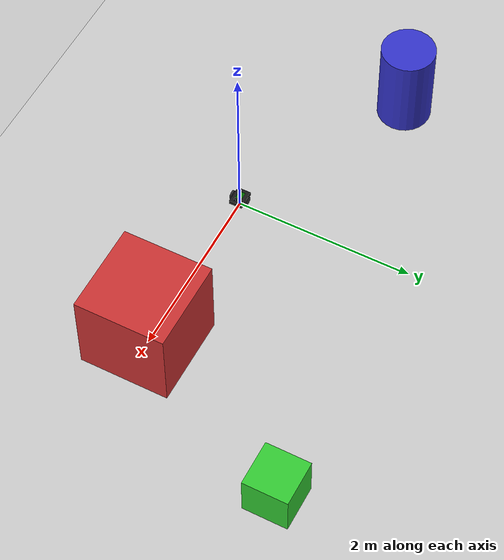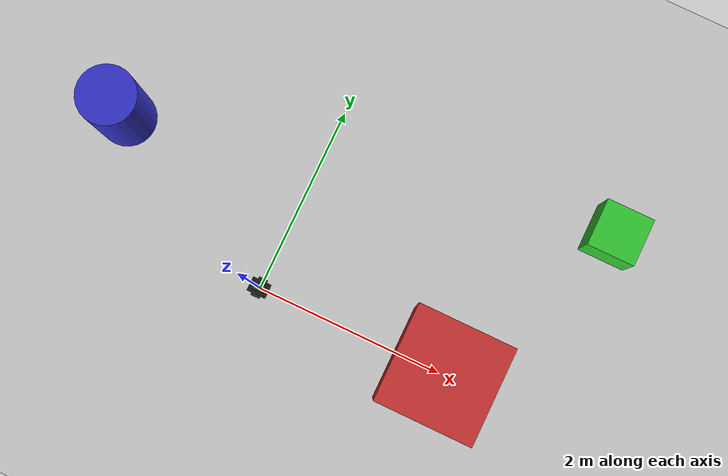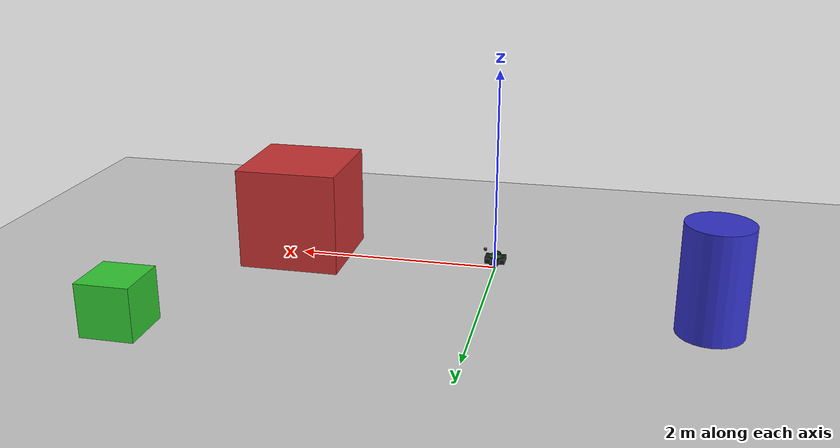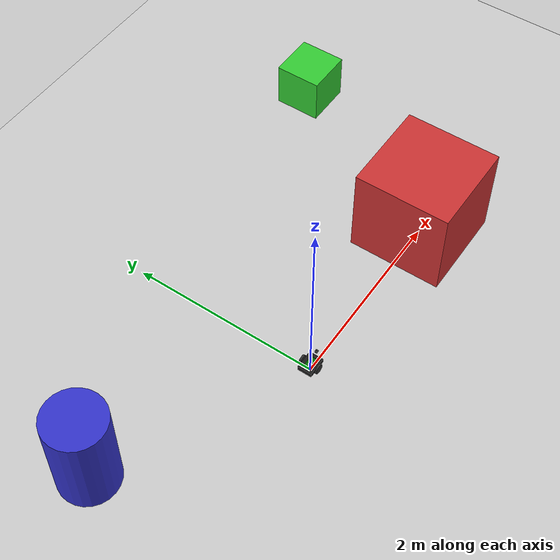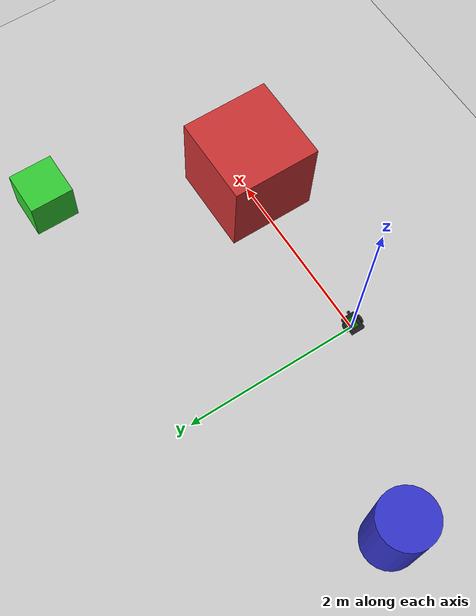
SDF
<?xml version="1.0" ?>
<!--
  Simulation world for Kria KV260 sensor fusion project.
  Target: Ignition Gazebo Fortress (Ubuntu 22.04 / ROS2 Humble)
-->
<sdf version="1.9">
  <world name="kv260_world">

    <!-- Physics -->
    <physics name="1ms" type="ignored">
      <max_step_size>0.001</max_step_size>
      <real_time_factor>1.0</real_time_factor>
    </physics>

    <!-- Required plugins -->
    <plugin filename="gz-sim-physics-system"          name="gz::sim::systems::Physics"/>
    <plugin filename="gz-sim-user-commands-system"    name="gz::sim::systems::UserCommands"/>
    <plugin filename="gz-sim-scene-broadcaster-system" name="gz::sim::systems::SceneBroadcaster"/>
    <plugin filename="gz-sim-sensors-system"          name="gz::sim::systems::Sensors">
      <render_engine>ogre2</render_engine>
    </plugin>
    <plugin filename="gz-sim-imu-system"              name="gz::sim::systems::Imu"/>
    <plugin filename="gz-sim-contact-system"          name="gz::sim::systems::Contact"/>

    <!-- Lighting -->
    <light name="sun" type="directional">
      <cast_shadows>true</cast_shadows>
      <pose>0 0 10 0 0 0</pose>
      <diffuse>0.9 0.9 0.9 1</diffuse>
      <specular>0.4 0.4 0.4 1</specular>
      <attenuation>
        <range>1000</range>
        <constant>0.9</constant>
        <linear>0.01</linear>
        <quadratic>0.001</quadratic>
      </attenuation>
      <direction>-0.5 0.1 -0.9</direction>
    </light>

    <!-- Ground plane -->
    <model name="ground_plane">
      <static>true</static>
      <link name="link">
        <collision name="collision">
          <geometry><plane><normal>0 0 1</normal><size>100 100</size></plane></geometry>
        </collision>
        <visual name="visual">
          <geometry><plane><normal>0 0 1</normal><size>100 100</size></plane></geometry>
          <material>
            <ambient>0.8 0.8 0.8 1</ambient>
            <diffuse>0.8 0.8 0.8 1</diffuse>
            <specular>0.8 0.8 0.8 1</specular>
          </material>
        </visual>
      </link>
    </model>

    <!-- Test objects for camera visibility -->
    <model name="box_0">
      <static>true</static>
      <pose>2 0 0.5 0 0 0</pose>
      <link name="link">
        <collision name="collision"><geometry><box><size>1 1 1</size></box></geometry></collision>
        <visual name="visual">
          <geometry><box><size>1 1 1</size></box></geometry>
          <material><ambient>0.8 0.2 0.2 1</ambient><diffuse>0.8 0.2 0.2 1</diffuse></material>
        </visual>
      </link>
    </model>

    <model name="box_1">
      <static>true</static>
      <pose>3 2 0.25 0 0 0</pose>
      <link name="link">
        <collision name="collision"><geometry><box><size>0.5 0.5 0.5</size></box></geometry></collision>
        <visual name="visual">
          <geometry><box><size>0.5 0.5 0.5</size></box></geometry>
          <material><ambient>0.2 0.8 0.2 1</ambient><diffuse>0.2 0.8 0.2 1</diffuse></material>
        </visual>
      </link>
    </model>

    <model name="cylinder_0">
      <static>true</static>
      <pose>-2 1 0.5 0 0 0</pose>
      <link name="link">
        <collision name="collision"><geometry><cylinder><radius>0.3</radius><length>1.0</length></cylinder></geometry></collision>
        <visual name="visual">
          <geometry><cylinder><radius>0.3</radius><length>1.0</length></cylinder></geometry>
          <material><ambient>0.2 0.2 0.8 1</ambient><diffuse>0.2 0.2 0.8 1</diffuse></material>
        </visual>
      </link>
    </model>

    <!-- Include KV260 robot model -->
    <include>
      <uri>model://kv260_robot</uri>
      <name>kv260_robot</name>
      <pose>0 0 0.1 0 0 0</pose>
    </include>

  </world>
</sdf>

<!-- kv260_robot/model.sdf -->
<sdf version="1.9">
  <model name="kv260_robot">

    <link name="base_link">
      <!-- Chassis -->
      <inertial>
        <mass>1.5</mass>
        <inertia><ixx>0.0281</ixx><ixy>0</ixy><ixz>0</ixz><iyy>0.0341</iyy><iyz>0</iyz><izz>0.0436</izz></inertia>
      </inertial>
      <collision name="chassis_collision">
        <geometry><box><size>0.2 0.15 0.05</size></box></geometry>
      </collision>
      <visual name="chassis_visual">
        <geometry><box><size>0.2 0.15 0.05</size></box></geometry>
        <material>
          <ambient>0.1 0.1 0.1 1</ambient>
          <diffuse>0.1 0.1 0.1 1</diffuse>
          <specular>0.5 0.5 0.5 1</specular>
        </material>
      </visual>

      <!-- Camera mount post -->
      <visual name="camera_post_visual">
        <pose>0.0 0 0.06 0 0 0</pose>
        <geometry><cylinder><radius>0.008</radius><length>0.07</length></cylinder></geometry>
        <material><ambient>0.3 0.3 0.3 1</ambient><diffuse>0.3 0.3 0.3 1</diffuse></material>
      </visual>

      <!-- KV260 board representation -->
      <visual name="kv260_board_visual">
        <pose>0 0 0.03 0 0 0</pose>
        <geometry><box><size>0.12 0.07 0.003</size></box></geometry>
        <material><ambient>0.0 0.4 0.0 1</ambient><diffuse>0.0 0.4 0.0 1</diffuse></material>
      </visual>
    </link>

    <!-- Left wheel -->
    <link name="left_wheel">
      <pose>0.0 0.09 0 -1.5707963 0 0</pose>
      <inertial>
        <mass>0.2</mass>
        <inertia><ixx>0.000233</ixx><ixy>0</ixy><ixz>0</ixz><iyy>0.000233</iyy><iyz>0</iyz><izz>0.000400</izz></inertia>
      </inertial>
      <collision name="collision">
        <geometry><cylinder><radius>0.05</radius><length>0.02</length></cylinder></geometry>
      </collision>
      <visual name="visual">
        <geometry><cylinder><radius>0.05</radius><length>0.02</length></cylinder></geometry>
        <material><ambient>0.2 0.2 0.2 1</ambient><diffuse>0.2 0.2 0.2 1</diffuse></material>
      </visual>
    </link>

    <!-- Right wheel -->
    <link name="right_wheel">
      <pose>0.0 -0.09 0 -1.5707963 0 0</pose>
      <inertial>
        <mass>0.2</mass>
        <inertia><ixx>0.000233</ixx><ixy>0</ixy><ixz>0</ixz><iyy>0.000233</iyy><iyz>0</iyz><izz>0.000400</izz></inertia>
      </inertial>
      <collision name="collision">
        <geometry><cylinder><radius>0.05</radius><length>0.02</length></cylinder></geometry>
      </collision>
      <visual name="visual">
        <geometry><cylinder><radius>0.05</radius><length>0.02</length></cylinder></geometry>
        <material><ambient>0.2 0.2 0.2 1</ambient><diffuse>0.2 0.2 0.2 1</diffuse></material>
      </visual>
    </link>

    <!-- Camera link — matches AR1335 + AP1302 ISP specs -->
    <link name="camera_link">
      <pose>0.1 0 0.095 0 0 0</pose>
      <inertial>
        <mass>0.02</mass>
        <inertia><ixx>1e-5</ixx><ixy>0</ixy><ixz>0</ixz><iyy>1e-5</iyy><iyz>0</iyz><izz>1e-5</izz></inertia>
      </inertial>
      <visual name="camera_body">
        <geometry><box><size>0.025 0.025 0.025</size></box></geometry>
        <material><ambient>0.05 0.05 0.05 1</ambient><diffuse>0.05 0.05 0.05 1</diffuse></material>
      </visual>
      <visual name="lens">
        <pose>0.013 0 0 0 1.5707963 0</pose>
        <geometry><cylinder><radius>0.006</radius><length>0.006</length></cylinder></geometry>
        <material><ambient>0.1 0.1 0.4 1</ambient><diffuse>0.1 0.1 0.4 1</diffuse></material>
      </visual>

      <!-- AR1335 camera sensor via AP1302 ISP (MIPI CSI-2 output) -->
      <sensor name="ar1335_camera" type="camera">
        <pose>0 0 0 0 0 0</pose>
        <always_on>1</always_on>
        <update_rate>30</update_rate>
        <visualize>true</visualize>
        <topic>/kv260/camera/image_raw</topic>
        <camera name="ar1335">
          <!-- AR1335: 1/3.2" sensor, ~3.5mm focal length → ~77° HFOV at 1080p -->
          <horizontal_fov>1.3439</horizontal_fov>
          <image>
            <width>1920</width>
            <height>1080</height>
            <format>R8G8B8</format>
          </image>
          <clip>
            <near>0.02</near>
            <far>300</far>
          </clip>
          <noise>
            <type>gaussian</type>
            <mean>0.0</mean>
            <stddev>0.005</stddev>
          </noise>
          <distortion>
            <k1>-0.28</k1>
            <k2>0.07</k2>
            <k3>0.0</k3>
            <p1>0.0</p1>
            <p2>0.0</p2>
            <center>0.5 0.5</center>
          </distortion>
        </camera>
      </sensor>
    </link>

    <!-- IMU link — co-located with camera (typical IAS module) -->
    <link name="imu_link">
      <pose>0 0 0.03 0 0 0</pose>
      <inertial>
        <mass>0.005</mass>
        <inertia><ixx>1e-6</ixx><ixy>0</ixy><ixz>0</ixz><iyy>1e-6</iyy><iyz>0</iyz><izz>1e-6</izz></inertia>
      </inertial>

      <!-- 6-DOF IMU: accelerometer + gyroscope at 200 Hz -->
      <sensor name="imu_sensor" type="imu">
        <always_on>1</always_on>
        <update_rate>200</update_rate>
        <topic>/kv260/imu/data_raw</topic>
        <imu>
          <angular_velocity>
            <x><noise type="gaussian"><mean>0</mean><stddev>2e-4</stddev><bias_mean>7.5e-6</bias_mean><bias_stddev>8e-7</bias_stddev></noise></x>
            <y><noise type="gaussian"><mean>0</mean><stddev>2e-4</stddev><bias_mean>7.5e-6</bias_mean><bias_stddev>8e-7</bias_stddev></noise></y>
            <z><noise type="gaussian"><mean>0</mean><stddev>2e-4</stddev><bias_mean>7.5e-6</bias_mean><bias_stddev>8e-7</bias_stddev></noise></z>
          </angular_velocity>
          <linear_acceleration>
            <x><noise type="gaussian"><mean>0</mean><stddev>1.7e-2</stddev><bias_mean>1e-1</bias_mean><bias_stddev>1e-3</bias_stddev></noise></x>
            <y><noise type="gaussian"><mean>0</mean><stddev>1.7e-2</stddev><bias_mean>1e-1</bias_mean><bias_stddev>1e-3</bias_stddev></noise></y>
            <z><noise type="gaussian"><mean>0</mean><stddev>1.7e-2</stddev><bias_mean>1e-1</bias_mean><bias_stddev>1e-3</bias_stddev></noise></z>
          </linear_acceleration>
        </imu>
      </sensor>
    </link>

    <!-- Joints -->
    <joint name="left_wheel_joint" type="revolute">
      <parent>base_link</parent><child>left_wheel</child>
      <axis><xyz>0 0 1</xyz><limit><lower>-1e16</lower><upper>1e16</upper></limit></axis>
    </joint>

    <joint name="right_wheel_joint" type="revolute">
      <parent>base_link</parent><child>right_wheel</child>
      <axis><xyz>0 0 1</xyz><limit><lower>-1e16</lower><upper>1e16</upper></limit></axis>
    </joint>

    <joint name="camera_joint" type="fixed">
      <parent>base_link</parent><child>camera_link</child>
    </joint>

    <joint name="imu_joint" type="fixed">
      <parent>base_link</parent><child>imu_link</child>
    </joint>

    <!-- Differential drive plugin -->
    <plugin filename="gz-sim-diff-drive-system" name="gz::sim::systems::DiffDrive">
      <left_joint>left_wheel_joint</left_joint>
      <right_joint>right_wheel_joint</right_joint>
      <wheel_separation>0.18</wheel_separation>
      <wheel_radius>0.05</wheel_radius>
      <odom_publish_frequency>50</odom_publish_frequency>
      <topic>/kv260/cmd_vel</topic>
      <odom_topic>/kv260/odom</odom_topic>
      <frame_id>odom</frame_id>
      <child_frame_id>base_link</child_frame_id>
    </plugin>

    <!-- Odometry publisher -->
    <plugin filename="gz-sim-odometry-publisher-system" name="gz::sim::systems::OdometryPublisher">
      <odom_publish_frequency>50</odom_publish_frequency>
    </plugin>

  </model>
</sdf>
